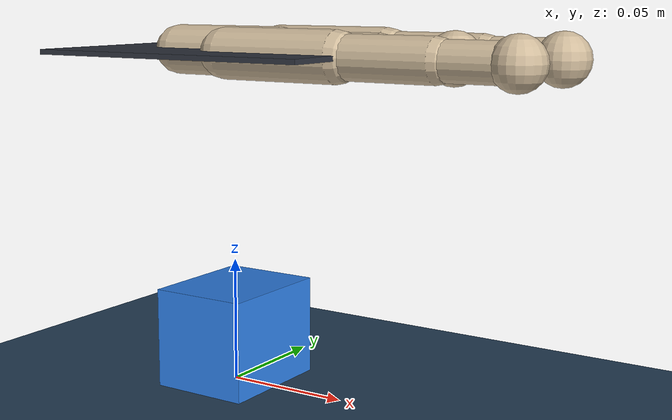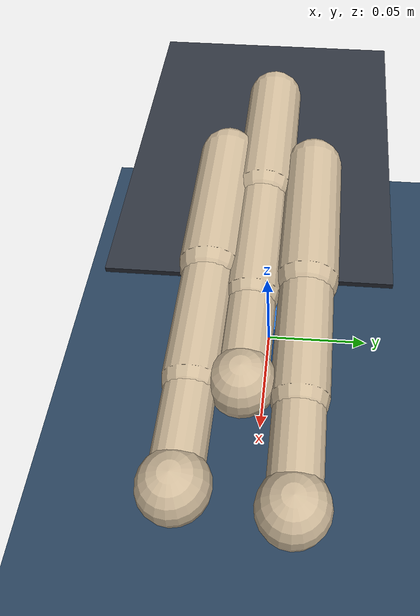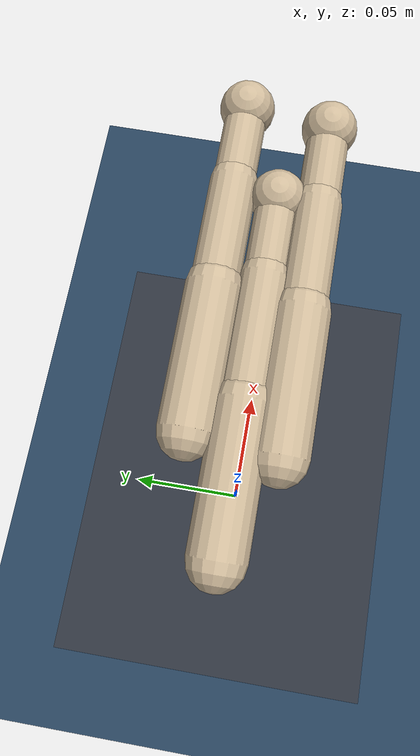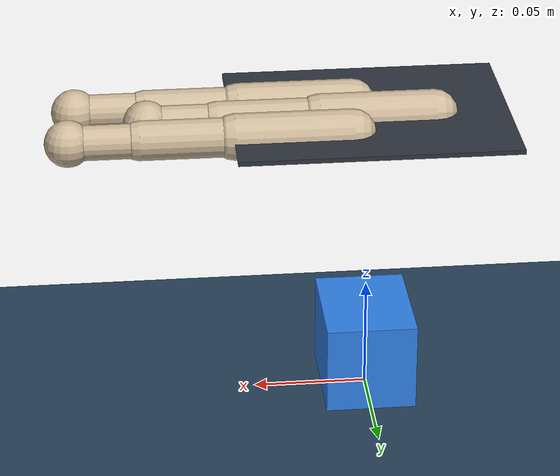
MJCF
<mujoco model="scene_prism1_tp0d0021p0d0300p0d0038_ip0d0094n0d0116p0d0000_mp0d0060p0d0178p0d0000">
  <compiler angle="radian" autolimits="true" />
  <option timestep="0.002" gravity="0 0 -9.81" integrator="implicitfast" />
  <visual>
    <headlight ambient=".4 .4 .4" diffuse=".8 .8 .8" specular="0.1 0.1 0.1" />
    <map znear=".01" />
    <quality shadowsize="2048" />
    <global elevation="-15" />
  </visual>
  <default>
    <geom friction="1.8 0.15 0.01" solref="0.006 1" solimp="0.97 0.995 0.0005" />
    <motor ctrlrange="-1 1" ctrllimited="true" />
    <default class="pose">
      <joint damping="2.0" armature="0.01" />
      <position kp="4000" kv="100" forcerange="-1000 1000" />
    </default>
    <default class="ctrl">
      <joint damping="0.5" armature="0.001" />
      <position kp="30" kv="0.5" gear="1" forcerange="-10 10" ctrlrange="-1 1" />
    </default>
  </default>
  <asset>
    <texture type="skybox" builtin="gradient" rgb1="0.3 0.5 0.7" rgb2="0 0 0" width="512" height="3072" />
    <texture type="2d" name="groundplane" builtin="checker" mark="edge" rgb1="0.2 0.3 0.4" rgb2="0.1 0.2 0.3" markrgb="0.8 0.8 0.8" width="300" height="300" />
    <material name="groundplane" texture="groundplane" texuniform="true" texrepeat="5 5" reflectance="0.2" />
    <texture name="grid" type="2d" builtin="checker" rgb1="0.15 0.15 0.15" rgb2="0.25 0.25 0.25" width="256" height="256" />
    <material name="table_mat" texture="grid" texrepeat="3 3" reflectance="0.2" />
    <material name="palm_mat" rgba="0.18 0.2 0.24 1" />
    <material name="finger_mat" rgba="0.8 0.72 0.6 1" />
    <material name="object_mat" rgba="0.18 0.5 0.9 1" />
  </asset>
  <worldbody>
    <light pos="0 0 1.5" dir="0 0 -1" directional="true" diffuse=".6 .6 .6" specular=".2 .2 .2" />
    <light pos="0.5 0.5 1.0" dir="-1 -1 -1" directional="true" diffuse=".4 .4 .4" specular=".1 .1 .1" />
    <geom name="floor" type="plane" size="1.5 1.5 0.1" material="groundplane" />
    <body name="cube" pos="0.000000 0.000000 0.020000">
      <freejoint />
      <geom type="box" size="0.020000 0.025000 0.020000" density="500" material="object_mat" friction="2.4 0.2 0.02" />
    </body>
    <body gravcomp="1" name="palm_pose" pos="0 0 0.134">
      <joint class="pose" name="palm_px" type="slide" axis="1 0 0" range="-0.20 0.20" />
      <joint class="pose" name="palm_py" type="slide" axis="0 1 0" range="-0.20 0.20" />
      <joint class="pose" name="palm_pz" type="slide" axis="0 0 1" range="-0.15 0.35" />
      <joint class="pose" name="palm_rx" type="hinge" axis="1 0 0" range="-1.57 1.57" />
      <joint class="pose" name="palm_ry" type="hinge" axis="0 1 0" range="-1.57 1.57" />
      <joint class="pose" name="palm_rz" type="hinge" axis="0 0 1" range="-3.14 3.14" />
      <geom type="box" size="0.06 0.045 0.001" material="palm_mat" />
      <body name="thumb_mount" pos="-0.027947 0.002 0">
        <inertial pos="0 0 0" mass="0.001" diaginertia="1e-6 1e-6 1e-6" />
        <body name="thumb_yaw_frame">
          <inertial pos="0 0 0" mass="0.001" diaginertia="1e-6 1e-6 1e-6" />
          <joint class="ctrl" name="thumb_yaw" type="hinge" axis="1 0 0" range="-1.1 1.1" />
          <body name="thumb_mcp_frame">
            <joint class="ctrl" name="thumb_mcp" type="hinge" axis="0 1 0" range="0 3.14" />
            <geom type="capsule" fromto="0 0 0 0.05 0 0" size="0.010" material="finger_mat" />
            <body name="thumb_len_frame" pos="0.053784 0 0">
              <geom type="capsule" fromto="0 0 0 0.04 0 0" size="0.0085" material="finger_mat" />
              <body name="thumb_pip_frame" pos="0.04 0 0">
                <joint class="ctrl" name="thumb_pip" type="hinge" axis="0 1 0" range="-1.2 0.5" />
                <geom type="capsule" fromto="0 0 0 0.03 0 0" size="0.0075" material="finger_mat" />
                <body name="thumb_tip" pos="0.03 0 0">
                  <geom type="sphere" size="0.010" material="finger_mat" friction="2.4 0.2 0.02" />
                  <geom type="sphere" pos="0 0.004 0" size="0.005" material="finger_mat" friction="2.4 0.2 0.02" />
                  <geom type="sphere" pos="0 -0.004 0" size="0.005" material="finger_mat" friction="2.4 0.2 0.02" />
                </body>
              </body>
            </body>
          </body>
        </body>
      </body>
      <body name="index_mount" pos="0.009426 0.018416 0">
        <inertial pos="0 0 0" mass="0.001" diaginertia="1e-6 1e-6 1e-6" />
        <body name="index_yaw_frame">
          <inertial pos="0 0 0" mass="0.001" diaginertia="1e-6 1e-6 1e-6" />
          <joint class="ctrl" name="index_yaw" type="hinge" axis="1 0 0" range="-1.1 1.1" />
          <body name="index_mcp_frame">
            <joint class="ctrl" name="index_mcp" type="hinge" axis="0 1 0" range="0 2.5" />
            <geom type="capsule" fromto="0 0 0 0.05 0 0" size="0.010" material="finger_mat" />
            <body name="index_len_frame" pos="0.05 0 0">
              <geom type="capsule" fromto="0 0 0 0.04 0 0" size="0.0085" material="finger_mat" />
              <body name="index_pip_frame" pos="0.04 0 0">
                <joint class="ctrl" name="index_pip" type="hinge" axis="0 1 0" range="-1.2 1.57" />
                <geom type="capsule" fromto="0 0 0 0.03 0 0" size="0.0075" material="finger_mat" />
                <body name="index_tip" pos="0.03 0 0">
                  <geom type="sphere" size="0.010" material="finger_mat" friction="2.4 0.2 0.02" />
                  <geom type="sphere" pos="0 0.004 0" size="0.005" material="finger_mat" friction="2.4 0.2 0.02" />
                  <geom type="sphere" pos="0 -0.004 0" size="0.005" material="finger_mat" friction="2.4 0.2 0.02" />
                </body>
              </body>
            </body>
          </body>
        </body>
      </body>
      <body name="middle_mount" pos="0.006011 -0.012191 0">
        <inertial pos="0 0 0" mass="0.001" diaginertia="1e-6 1e-6 1e-6" />
        <body name="middle_yaw_frame">
          <inertial pos="0 0 0" mass="0.001" diaginertia="1e-6 1e-6 1e-6" />
          <joint class="ctrl" name="middle_yaw" type="hinge" axis="1 0 0" range="-1.1 1.1" />
          <body name="middle_mcp_frame">
            <joint class="ctrl" name="middle_mcp" type="hinge" axis="0 1 0" range="0 2.5" />
            <geom type="capsule" fromto="0 0 0 0.05 0 0" size="0.010" material="finger_mat" />
            <body name="middle_len_frame" pos="0.05 0 0">
              <geom type="capsule" fromto="0 0 0 0.04 0 0" size="0.0085" material="finger_mat" />
              <body name="middle_pip_frame" pos="0.04 0 0">
                <joint class="ctrl" name="middle_pip" type="hinge" axis="0 1 0" range="-1.2 1.57" />
                <geom type="capsule" fromto="0 0 0 0.03 0 0" size="0.0075" material="finger_mat" />
                <body name="middle_tip" pos="0.03 0 0">
                  <geom type="sphere" size="0.010" material="finger_mat" friction="2.4 0.2 0.02" />
                  <geom type="sphere" pos="0 0.004 0" size="0.005" material="finger_mat" friction="2.4 0.2 0.02" />
                  <geom type="sphere" pos="0 -0.004 0" size="0.005" material="finger_mat" friction="2.4 0.2 0.02" />
                </body>
              </body>
            </body>
          </body>
        </body>
      </body>
    </body>
  </worldbody>
  <actuator>
    <position class="pose" name="a_palm_px" joint="palm_px" ctrlrange="-0.20 0.20" />
    <position class="pose" name="a_palm_py" joint="palm_py" ctrlrange="-0.20 0.20" />
    <position class="pose" name="a_palm_pz" joint="palm_pz" ctrlrange="-0.15 0.35" />
    <position class="pose" name="a_palm_rx" joint="palm_rx" ctrlrange="-1.57 1.57" />
    <position class="pose" name="a_palm_ry" joint="palm_ry" ctrlrange="-1.57 1.57" />
    <position class="pose" name="a_palm_rz" joint="palm_rz" ctrlrange="-3.14 3.14" />
    <position class="ctrl" name="a_thumb_yaw" joint="thumb_yaw" ctrlrange="-1.1 1.1" />
    <position class="ctrl" name="a_thumb_mcp" joint="thumb_mcp" ctrlrange="0 3.14" />
    <position class="ctrl" name="a_thumb_pip" joint="thumb_pip" ctrlrange="-1.2 0.5" />
    <position class="ctrl" name="a_index_yaw" joint="index_yaw" ctrlrange="-1.1 1.1" />
    <position class="ctrl" name="a_index_mcp" joint="index_mcp" ctrlrange="0 2.5" />
    <position class="ctrl" name="a_index_pip" joint="index_pip" ctrlrange="-1.2 1.57" />
    <position class="ctrl" name="a_middle_yaw" joint="middle_yaw" ctrlrange="-1.1 1.1" />
    <position class="ctrl" name="a_middle_mcp" joint="middle_mcp" ctrlrange="0 2.5" />
    <position class="ctrl" name="a_middle_pip" joint="middle_pip" ctrlrange="-1.2 1.57" />
  </actuator>
  <keyframe>
    <key name="open" qpos="&#10;        0 0 0.02 1 0 0 0 0.02 0 0 0 0 0 0 2 -0.707 0 1.25 1 0 1.25 1&#10;      " ctrl="&#10;        0.02 0 0 0 0 0 0 2 -0.707 0 1.25 1 0 1.25 1&#10;      " />
    <key name="foundational" qpos="&#10;        0.003416009044 0.007412654123 0.02366199055 0.8696023978 -0.002697015512 0.01746121137 -0.4934364214 0.01998424239 -8.492414196e-06 -0.0004393293315 -2.192008736e-06 -1.719738451e-06 8.596588617e-07 0.2612591899 1.797101333 -1.132581123 -0.2316342868 1.357995432 0.9777239326 -0.08154688029 1.439114829 1.055500522&#10;      " ctrl="&#10;        0.02 0 0 0 0 0 0.02227467475 1.384774137 -1.2 -0.1248676728 1.571162798 1.033194616 0.03781392887 1.534976746 1.065511227&#10;      " />
  </keyframe>
</mujoco>
